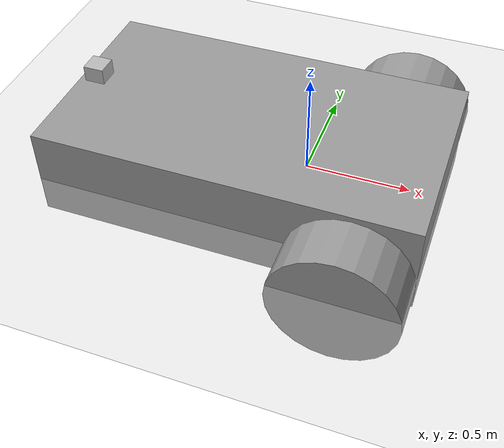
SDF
<?xml version="1.0" ?>
<sdf version="1.5">
  <world name="default">
    <!-- A global light source -->
    <include>
      <uri>model://sun</uri>
    </include>
    <!-- A ground plane -->
    <include>
      <uri>model://ground_plane</uri>
    </include>

    <!-- A testing model that includes the Velodyne sensor model -->
    <model name="my_simple_cart">
      <include>
        <uri>model://simple_cart</uri>
      </include>

      <!-- Attach the plugin to this model -->
      <plugin name="differential_drive_control" filename="libdifferential_drive_plugin.so">
        <velocity>2</velocity>
      </plugin>
    </model>

  </world>
</sdf>

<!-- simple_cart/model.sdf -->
<sdf version='1.6'>
  <model name='differential_drive_robot'>
    <link name='link_0'>
      <inertial>
        <mass>0.811541</mass>
        <inertia>
          <ixx>0.0813018</ixx>
          <ixy>0</ixy>
          <ixz>0</ixz>
          <iyy>0.233992</iyy>
          <iyz>0</iyz>
          <izz>0.287947</izz>
        </inertia>
        <pose frame=''>0 0 0 0 -0 0</pose>
      </inertial>
      <pose frame=''>-0.252875 -0.007186 0.035183 0 -0 0</pose>
      <gravity>1</gravity>
      <self_collide>0</self_collide>
      <kinematic>0</kinematic>
      <enable_wind>0</enable_wind>
      <visual name='visual'>
        <pose frame=''>0 0 0 0 -0 0</pose>
        <geometry>
          <box>
            <size>1.80493 1 0.44965</size>
          </box>
        </geometry>
        <material>
          <lighting>1</lighting>
          <script>
            <uri>file://media/materials/scripts/gazebo.material</uri>
            <name>Gazebo/Grey</name>
          </script>
          <shader type='pixel'>
            <normal_map>__default__</normal_map>
          </shader>
          <ambient>0.3 0.3 0.3 1</ambient>
          <diffuse>0.7 0.7 0.7 1</diffuse>
          <specular>0.01 0.01 0.01 1</specular>
          <emissive>0 0 0 1</emissive>
        </material>
        <transparency>0</transparency>
        <cast_shadows>1</cast_shadows>
      </visual>
      <collision name='collision'>
        <laser_retro>0</laser_retro>
        <max_contacts>10</max_contacts>
        <pose frame=''>0 0 0 0 -0 0</pose>
        <geometry>
          <box>
            <size>1.80493 1 0.44965</size>
          </box>
        </geometry>
        <surface>
          <friction>
            <ode>
              <mu>1</mu>
              <mu2>1</mu2>
              <fdir1>0 0 0</fdir1>
              <slip1>0</slip1>
              <slip2>0</slip2>
            </ode>
            <torsional>
              <coefficient>1</coefficient>
              <patch_radius>0</patch_radius>
              <surface_radius>0</surface_radius>
              <use_patch_radius>1</use_patch_radius>
              <ode>
                <slip>0</slip>
              </ode>
            </torsional>
          </friction>
          <bounce>
            <restitution_coefficient>0</restitution_coefficient>
            <threshold>1e+06</threshold>
          </bounce>
          <contact>
            <collide_without_contact>0</collide_without_contact>
            <collide_without_contact_bitmask>1</collide_without_contact_bitmask>
            <collide_bitmask>1</collide_bitmask>
            <ode>
              <soft_cfm>0</soft_cfm>
              <soft_erp>0.2</soft_erp>
              <kp>1e+13</kp>
              <kd>1</kd>
              <max_vel>0.01</max_vel>
              <min_depth>0</min_depth>
            </ode>
            <bullet>
              <split_impulse>1</split_impulse>
              <split_impulse_penetration_threshold>-0.01</split_impulse_penetration_threshold>
              <soft_cfm>0</soft_cfm>
              <soft_erp>0.2</soft_erp>
              <kp>1e+13</kp>
              <kd>1</kd>
            </bullet>
          </contact>
        </surface>
      </collision>
    </link>
    <link name='link_1'>
      <inertial>
        <mass>1</mass>
        <inertia>
          <ixx>0.145833</ixx>
          <ixy>0</ixy>
          <ixz>0</ixz>
          <iyy>0.145833</iyy>
          <iyz>0</iyz>
          <izz>0.125</izz>
        </inertia>
        <pose frame=''>0 0 0 0 -0 0</pose>
      </inertial>
      <pose frame=''>0.349591 0.632843 -0.064817 1.5707 -0 0</pose>
      <gravity>1</gravity>
      <self_collide>0</self_collide>
      <kinematic>0</kinematic>
      <enable_wind>0</enable_wind>
      <visual name='visual'>
        <pose frame=''>0 0 0 0 -0 0</pose>
        <geometry>
          <cylinder>
            <radius>0.3</radius>
            <length>0.25</length>
          </cylinder>
        </geometry>
        <material>
          <lighting>1</lighting>
          <script>
            <uri>file://media/materials/scripts/gazebo.material</uri>
            <name>Gazebo/Grey</name>
          </script>
          <shader type='pixel'>
            <normal_map>__default__</normal_map>
          </shader>
          <ambient>0.3 0.3 0.3 1</ambient>
          <diffuse>0.7 0.7 0.7 1</diffuse>
          <specular>0.01 0.01 0.01 1</specular>
          <emissive>0 0 0 1</emissive>
        </material>
        <transparency>0</transparency>
        <cast_shadows>1</cast_shadows>
      </visual>
      <collision name='collision'>
        <laser_retro>0</laser_retro>
        <max_contacts>10</max_contacts>
        <pose frame=''>0 0 0 0 -0 0</pose>
        <geometry>
          <cylinder>
            <radius>0.3</radius>
            <length>0.25</length>
          </cylinder>
        </geometry>
        <surface>
          <friction>
            <ode>
              <mu>1</mu>
              <mu2>1</mu2>
              <fdir1>0 0 0</fdir1>
              <slip1>0</slip1>
              <slip2>0</slip2>
            </ode>
            <torsional>
              <coefficient>1</coefficient>
              <patch_radius>0</patch_radius>
              <surface_radius>0</surface_radius>
              <use_patch_radius>1</use_patch_radius>
              <ode>
                <slip>0</slip>
              </ode>
            </torsional>
          </friction>
          <bounce>
            <restitution_coefficient>0</restitution_coefficient>
            <threshold>1e+06</threshold>
          </bounce>
          <contact>
            <collide_without_contact>0</collide_without_contact>
            <collide_without_contact_bitmask>1</collide_without_contact_bitmask>
            <collide_bitmask>1</collide_bitmask>
            <ode>
              <soft_cfm>0</soft_cfm>
              <soft_erp>0.2</soft_erp>
              <kp>1e+13</kp>
              <kd>1</kd>
              <max_vel>0.01</max_vel>
              <min_depth>0</min_depth>
            </ode>
            <bullet>
              <split_impulse>1</split_impulse>
              <split_impulse_penetration_threshold>-0.01</split_impulse_penetration_threshold>
              <soft_cfm>0</soft_cfm>
              <soft_erp>0.2</soft_erp>
              <kp>1e+13</kp>
              <kd>1</kd>
            </bullet>
          </contact>
        </surface>
      </collision>
    </link>
    <link name='link_1_clone'>
      <inertial>
        <mass>1</mass>
        <inertia>
          <ixx>0.145833</ixx>
          <ixy>0</ixy>
          <ixz>0</ixz>
          <iyy>0.145833</iyy>
          <iyz>0</iyz>
          <izz>0.125</izz>
        </inertia>
        <pose frame=''>0 0 0 0 -0 0</pose>
      </inertial>
      <pose frame=''>0.349591 -0.632215 -0.064817 1.5707 -0 0</pose>
      <gravity>1</gravity>
      <self_collide>0</self_collide>
      <kinematic>0</kinematic>
      <enable_wind>0</enable_wind>
      <visual name='visual'>
        <pose frame=''>0 0 0 0 -0 0</pose>
        <geometry>
          <cylinder>
            <radius>0.3</radius>
            <length>0.25</length>
          </cylinder>
        </geometry>
        <material>
          <lighting>1</lighting>
          <script>
            <uri>file://media/materials/scripts/gazebo.material</uri>
            <name>Gazebo/Grey</name>
          </script>
          <shader type='pixel'>
            <normal_map>__default__</normal_map>
          </shader>
          <ambient>0.3 0.3 0.3 1</ambient>
          <diffuse>0.7 0.7 0.7 1</diffuse>
          <specular>0.01 0.01 0.01 1</specular>
          <emissive>0 0 0 1</emissive>
        </material>
        <transparency>0</transparency>
        <cast_shadows>1</cast_shadows>
      </visual>
      <collision name='collision'>
        <laser_retro>0</laser_retro>
        <max_contacts>10</max_contacts>
        <pose frame=''>0 0 0 0 -0 0</pose>
        <geometry>
          <cylinder>
            <radius>0.3</radius>
            <length>0.25</length>
          </cylinder>
        </geometry>
        <surface>
          <friction>
            <ode>
              <mu>1</mu>
              <mu2>1</mu2>
              <fdir1>0 0 0</fdir1>
              <slip1>0</slip1>
              <slip2>0</slip2>
            </ode>
            <torsional>
              <coefficient>1</coefficient>
              <patch_radius>0</patch_radius>
              <surface_radius>0</surface_radius>
              <use_patch_radius>1</use_patch_radius>
              <ode>
                <slip>0</slip>
              </ode>
            </torsional>
          </friction>
          <bounce>
            <restitution_coefficient>0</restitution_coefficient>
            <threshold>1e+06</threshold>
          </bounce>
          <contact>
            <collide_without_contact>0</collide_without_contact>
            <collide_without_contact_bitmask>1</collide_without_contact_bitmask>
            <collide_bitmask>1</collide_bitmask>
            <ode>
              <soft_cfm>0</soft_cfm>
              <soft_erp>0.2</soft_erp>
              <kp>1e+13</kp>
              <kd>1</kd>
              <max_vel>0.01</max_vel>
              <min_depth>0</min_depth>
            </ode>
            <bullet>
              <split_impulse>1</split_impulse>
              <split_impulse_penetration_threshold>-0.01</split_impulse_penetration_threshold>
              <soft_cfm>0</soft_cfm>
              <soft_erp>0.2</soft_erp>
              <kp>1e+13</kp>
              <kd>1</kd>
            </bullet>
          </contact>
        </surface>
      </collision>
    </link>
    <link name='link_2'>
      <inertial>
        <mass>1</mass>
        <inertia>
          <ixx>0.1</ixx>
          <ixy>0</ixy>
          <ixz>0</ixz>
          <iyy>0.1</iyy>
          <iyz>0</iyz>
          <izz>0.1</izz>
        </inertia>
        <pose frame=''>0 0 0 0 -0 0</pose>
      </inertial>
      <pose frame=''>-0.955341 -0.007186 -0.164817 0 -0 0</pose>
      <gravity>1</gravity>
      <self_collide>0</self_collide>
      <kinematic>0</kinematic>
      <enable_wind>0</enable_wind>
      <visual name='visual'>
        <pose frame=''>0 0 0 0 -0 0</pose>
        <geometry>
          <sphere>
            <radius>0.2</radius>
          </sphere>
        </geometry>
        <material>
          <lighting>1</lighting>
          <script>
            <uri>file://media/materials/scripts/gazebo.material</uri>
            <name>Gazebo/Grey</name>
          </script>
          <shader type='pixel'>
            <normal_map>__default__</normal_map>
          </shader>
          <ambient>0.3 0.3 0.3 1</ambient>
          <diffuse>0.7 0.7 0.7 1</diffuse>
          <specular>0.01 0.01 0.01 1</specular>
          <emissive>0 0 0 1</emissive>
        </material>
        <transparency>0</transparency>
        <cast_shadows>1</cast_shadows>
      </visual>
      <collision name='collision'>
        <laser_retro>0</laser_retro>
        <max_contacts>10</max_contacts>
        <pose frame=''>0 0 0 0 -0 0</pose>
        <geometry>
          <sphere>
            <radius>0.2</radius>
          </sphere>
        </geometry>
        <surface>
          <friction>
            <ode>
              <mu>1</mu>
              <mu2>1</mu2>
              <fdir1>0 0 0</fdir1>
              <slip1>0</slip1>
              <slip2>0</slip2>
            </ode>
            <torsional>
              <coefficient>1</coefficient>
              <patch_radius>0</patch_radius>
              <surface_radius>0</surface_radius>
              <use_patch_radius>1</use_patch_radius>
              <ode>
                <slip>0</slip>
              </ode>
            </torsional>
          </friction>
          <bounce>
            <restitution_coefficient>0</restitution_coefficient>
            <threshold>1e+06</threshold>
          </bounce>
          <contact>
            <collide_without_contact>0</collide_without_contact>
            <collide_without_contact_bitmask>1</collide_without_contact_bitmask>
            <collide_bitmask>1</collide_bitmask>
            <ode>
              <soft_cfm>0</soft_cfm>
              <soft_erp>0.2</soft_erp>
              <kp>1e+13</kp>
              <kd>1</kd>
              <max_vel>0.01</max_vel>
              <min_depth>0</min_depth>
            </ode>
            <bullet>
              <split_impulse>1</split_impulse>
              <split_impulse_penetration_threshold>-0.01</split_impulse_penetration_threshold>
              <soft_cfm>0</soft_cfm>
              <soft_erp>0.2</soft_erp>
              <kp>1e+13</kp>
              <kd>1</kd>
            </bullet>
          </contact>
        </surface>
      </collision>
    </link>
    <model name='camera'>
      <pose frame=''>-1.07303 0 0.28895 0 0 3.14159</pose>
      <link name='link'>
        <inertial>
          <mass>0.1</mass>
          <inertia>
            <ixx>0.000166667</ixx>
            <iyy>0.000166667</iyy>
            <izz>0.000166667</izz>
            <ixy>0</ixy>
            <ixz>0</ixz>
            <iyz>0</iyz>
          </inertia>
          <pose frame=''>0 0 0 0 -0 0</pose>
        </inertial>
        <collision name='collision'>
          <geometry>
            <box>
              <size>0.1 0.1 0.1</size>
            </box>
          </geometry>
          <max_contacts>10</max_contacts>
          <surface>
            <contact>
              <ode/>
            </contact>
            <bounce/>
            <friction>
              <torsional>
                <ode/>
              </torsional>
              <ode/>
            </friction>
          </surface>
        </collision>
        <visual name='visual'>
          <geometry>
            <box>
              <size>0.1 0.1 0.1</size>
            </box>
          </geometry>
        </visual>
        <sensor name='camera' type='camera'>
          <camera name='__default__'>
            <horizontal_fov>1.047</horizontal_fov>
            <image>
              <width>320</width>
              <height>240</height>
            </image>
            <clip>
              <near>0.1</near>
              <far>100</far>
            </clip>
          </camera>
          <always_on>1</always_on>
          <update_rate>30</update_rate>
          <visualize>1</visualize>
        </sensor>
        <self_collide>0</self_collide>
        <enable_wind>0</enable_wind>
        <kinematic>0</kinematic>
      </link>
    </model>

    <joint name='link_0_JOINT_0' type='revolute'>
      <parent>link_0</parent>
      <child>link_1</child>
      <pose frame=''>0 0 0 0 -0 0</pose>
      <axis>
        <xyz>0 0 1</xyz>
        <use_parent_model_frame>0</use_parent_model_frame>
        <limit>
          <lower>-1.79769e+308</lower>
          <upper>1.79769e+308</upper>
          <effort>-1</effort>
          <velocity>-1</velocity>
        </limit>
        <dynamics>
          <spring_reference>0</spring_reference>
          <spring_stiffness>0</spring_stiffness>
          <damping>0</damping>
          <friction>0</friction>
        </dynamics>
      </axis>
      <physics>
        <ode>
          <limit>
            <cfm>0</cfm>
            <erp>0.2</erp>
          </limit>
          <suspension>
            <cfm>0</cfm>
            <erp>0.2</erp>
          </suspension>
        </ode>
      </physics>
    </joint>
    <joint name='link_0_JOINT_1' type='revolute'>
      <parent>link_0</parent>
      <child>link_1_clone</child>
      <pose frame=''>0 0 0 0 -0 0</pose>
      <axis>
        <xyz>0 0 -1</xyz>
        <use_parent_model_frame>0</use_parent_model_frame>
        <limit>
          <lower>-1.79769e+308</lower>
          <upper>1.79769e+308</upper>
          <effort>-1</effort>
          <velocity>-1</velocity>
        </limit>
        <dynamics>
          <spring_reference>0</spring_reference>
          <spring_stiffness>0</spring_stiffness>
          <damping>0</damping>
          <friction>0</friction>
        </dynamics>
      </axis>
      <physics>
        <ode>
          <limit>
            <cfm>0</cfm>
            <erp>0.2</erp>
          </limit>
          <suspension>
            <cfm>0</cfm>
            <erp>0.2</erp>
          </suspension>
        </ode>
      </physics>
    </joint>
    <joint name='link_0_JOINT_2' type='ball'>
      <parent>link_0</parent>
      <child>link_2</child>
      <pose frame=''>0 0 0 0 -0 0</pose>
      <physics>
        <ode>
          <limit>
            <cfm>0</cfm>
            <erp>0.2</erp>
          </limit>
          <suspension>
            <cfm>0</cfm>
            <erp>0.2</erp>
          </suspension>
        </ode>
      </physics>
    </joint>
    <joint name='link_0_JOINT_0_0' type='fixed'>
      <parent>link_0</parent>
      <child>camera::link</child>
      <pose frame=''>0 0 0 0 -0 0</pose>
      <physics>
        <ode>
          <limit>
            <cfm>0</cfm>
            <erp>0.2</erp>
          </limit>
          <suspension>
            <cfm>0</cfm>
            <erp>0.2</erp>
          </suspension>
        </ode>
      </physics>
    </joint>
    <static>0</static>
    <allow_auto_disable>1</allow_auto_disable>
  </model>
</sdf>
